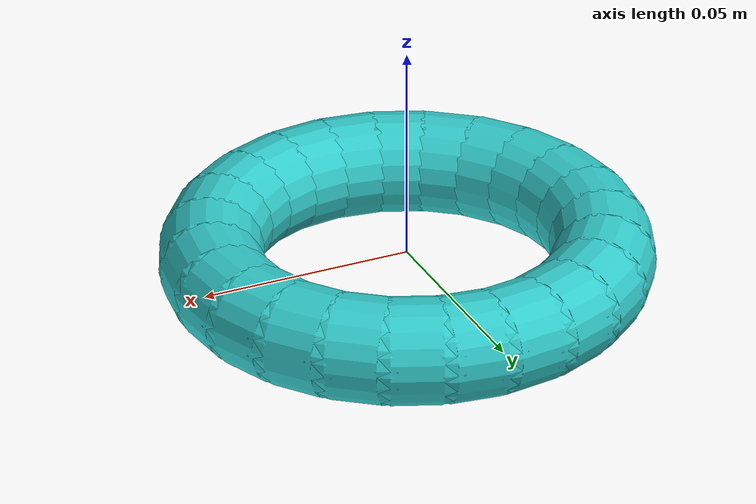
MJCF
<mujoco model="torus_ring_size1">
  <worldbody>
    <body>
      <body name="object">
        <!-- 组合几何体生成圆环 -->
        <geom name="ring_seg_0" type="capsule" fromto="0.045 0.0 0 0.04346666218300807 0.011646857029613433 0" size="0.011" rgba="0.2 0.8 0.8 1" density="50" friction="1.0 0.05 0.05" condim="6" solref="0.001 1" solimp="0.95 0.99 0.001" group="0"/>
        <geom name="ring_seg_vis_0" type="capsule" fromto="0.045 0.0 0 0.04346666218300807 0.011646857029613433 0" size="0.012" rgba="0.2 0.8 0.8 1" contype="0" conaffinity="0" group="1"/>
        <geom name="ring_seg_1" type="capsule" fromto="0.04346666218300807 0.011646857029613433 0 0.03897114317029974 0.022499999999999996 0" size="0.011" rgba="0.2 0.8 0.8 1" density="50" friction="1.0 0.05 0.05" condim="6" solref="0.001 1" solimp="0.95 0.99 0.001" group="0"/>
        <geom name="ring_seg_vis_1" type="capsule" fromto="0.04346666218300807 0.011646857029613433 0 0.03897114317029974 0.022499999999999996 0" size="0.012" rgba="0.2 0.8 0.8 1" contype="0" conaffinity="0" group="1"/>
        <geom name="ring_seg_2" type="capsule" fromto="0.03897114317029974 0.022499999999999996 0 0.03181980515339464 0.03181980515339464 0" size="0.011" rgba="0.2 0.8 0.8 1" density="50" friction="1.0 0.05 0.05" condim="6" solref="0.001 1" solimp="0.95 0.99 0.001" group="0"/>
        <geom name="ring_seg_vis_2" type="capsule" fromto="0.03897114317029974 0.022499999999999996 0 0.03181980515339464 0.03181980515339464 0" size="0.012" rgba="0.2 0.8 0.8 1" contype="0" conaffinity="0" group="1"/>
        <geom name="ring_seg_3" type="capsule" fromto="0.03181980515339464 0.03181980515339464 0 0.022500000000000003 0.03897114317029973 0" size="0.011" rgba="0.2 0.8 0.8 1" density="50" friction="1.0 0.05 0.05" condim="6" solref="0.001 1" solimp="0.95 0.99 0.001" group="0"/>
        <geom name="ring_seg_vis_3" type="capsule" fromto="0.03181980515339464 0.03181980515339464 0 0.022500000000000003 0.03897114317029973 0" size="0.012" rgba="0.2 0.8 0.8 1" contype="0" conaffinity="0" group="1"/>
        <geom name="ring_seg_4" type="capsule" fromto="0.022500000000000003 0.03897114317029973 0 0.011646857029613433 0.04346666218300807 0" size="0.011" rgba="0.2 0.8 0.8 1" density="50" friction="1.0 0.05 0.05" condim="6" solref="0.001 1" solimp="0.95 0.99 0.001" group="0"/>
        <geom name="ring_seg_vis_4" type="capsule" fromto="0.022500000000000003 0.03897114317029973 0 0.011646857029613433 0.04346666218300807 0" size="0.012" rgba="0.2 0.8 0.8 1" contype="0" conaffinity="0" group="1"/>
        <geom name="ring_seg_5" type="capsule" fromto="0.011646857029613433 0.04346666218300807 0 2.7554552980815448e-18 0.045 0" size="0.011" rgba="0.2 0.8 0.8 1" density="50" friction="1.0 0.05 0.05" condim="6" solref="0.001 1" solimp="0.95 0.99 0.001" group="0"/>
        <geom name="ring_seg_vis_5" type="capsule" fromto="0.011646857029613433 0.04346666218300807 0 2.7554552980815448e-18 0.045 0" size="0.012" rgba="0.2 0.8 0.8 1" contype="0" conaffinity="0" group="1"/>
        <geom name="ring_seg_6" type="capsule" fromto="2.7554552980815448e-18 0.045 0 -0.011646857029613428 0.04346666218300807 0" size="0.011" rgba="0.2 0.8 0.8 1" density="50" friction="1.0 0.05 0.05" condim="6" solref="0.001 1" solimp="0.95 0.99 0.001" group="0"/>
        <geom name="ring_seg_vis_6" type="capsule" fromto="2.7554552980815448e-18 0.045 0 -0.011646857029613428 0.04346666218300807 0" size="0.012" rgba="0.2 0.8 0.8 1" contype="0" conaffinity="0" group="1"/>
        <geom name="ring_seg_7" type="capsule" fromto="-0.011646857029613428 0.04346666218300807 0 -0.02249999999999999 0.03897114317029974 0" size="0.011" rgba="0.2 0.8 0.8 1" density="50" friction="1.0 0.05 0.05" condim="6" solref="0.001 1" solimp="0.95 0.99 0.001" group="0"/>
        <geom name="ring_seg_vis_7" type="capsule" fromto="-0.011646857029613428 0.04346666218300807 0 -0.02249999999999999 0.03897114317029974 0" size="0.012" rgba="0.2 0.8 0.8 1" contype="0" conaffinity="0" group="1"/>
        <geom name="ring_seg_8" type="capsule" fromto="-0.02249999999999999 0.03897114317029974 0 -0.03181980515339464 0.03181980515339464 0" size="0.011" rgba="0.2 0.8 0.8 1" density="50" friction="1.0 0.05 0.05" condim="6" solref="0.001 1" solimp="0.95 0.99 0.001" group="0"/>
        <geom name="ring_seg_vis_8" type="capsule" fromto="-0.02249999999999999 0.03897114317029974 0 -0.03181980515339464 0.03181980515339464 0" size="0.012" rgba="0.2 0.8 0.8 1" contype="0" conaffinity="0" group="1"/>
        <geom name="ring_seg_9" type="capsule" fromto="-0.03181980515339464 0.03181980515339464 0 -0.03897114317029974 0.022499999999999996 0" size="0.011" rgba="0.2 0.8 0.8 1" density="50" friction="1.0 0.05 0.05" condim="6" solref="0.001 1" solimp="0.95 0.99 0.001" group="0"/>
        <geom name="ring_seg_vis_9" type="capsule" fromto="-0.03181980515339464 0.03181980515339464 0 -0.03897114317029974 0.022499999999999996 0" size="0.012" rgba="0.2 0.8 0.8 1" contype="0" conaffinity="0" group="1"/>
        <geom name="ring_seg_10" type="capsule" fromto="-0.03897114317029974 0.022499999999999996 0 -0.04346666218300807 0.011646857029613445 0" size="0.011" rgba="0.2 0.8 0.8 1" density="50" friction="1.0 0.05 0.05" condim="6" solref="0.001 1" solimp="0.95 0.99 0.001" group="0"/>
        <geom name="ring_seg_vis_10" type="capsule" fromto="-0.03897114317029974 0.022499999999999996 0 -0.04346666218300807 0.011646857029613445 0" size="0.012" rgba="0.2 0.8 0.8 1" contype="0" conaffinity="0" group="1"/>
        <geom name="ring_seg_11" type="capsule" fromto="-0.04346666218300807 0.011646857029613445 0 -0.045 5.5109105961630896e-18 0" size="0.011" rgba="0.2 0.8 0.8 1" density="50" friction="1.0 0.05 0.05" condim="6" solref="0.001 1" solimp="0.95 0.99 0.001" group="0"/>
        <geom name="ring_seg_vis_11" type="capsule" fromto="-0.04346666218300807 0.011646857029613445 0 -0.045 5.5109105961630896e-18 0" size="0.012" rgba="0.2 0.8 0.8 1" contype="0" conaffinity="0" group="1"/>
        <geom name="ring_seg_12" type="capsule" fromto="-0.045 5.5109105961630896e-18 0 -0.04346666218300807 -0.011646857029613435 0" size="0.011" rgba="0.2 0.8 0.8 1" density="50" friction="1.0 0.05 0.05" condim="6" solref="0.001 1" solimp="0.95 0.99 0.001" group="0"/>
        <geom name="ring_seg_vis_12" type="capsule" fromto="-0.045 5.5109105961630896e-18 0 -0.04346666218300807 -0.011646857029613435 0" size="0.012" rgba="0.2 0.8 0.8 1" contype="0" conaffinity="0" group="1"/>
        <geom name="ring_seg_13" type="capsule" fromto="-0.04346666218300807 -0.011646857029613435 0 -0.038971143170299746 -0.022499999999999985 0" size="0.011" rgba="0.2 0.8 0.8 1" density="50" friction="1.0 0.05 0.05" condim="6" solref="0.001 1" solimp="0.95 0.99 0.001" group="0"/>
        <geom name="ring_seg_vis_13" type="capsule" fromto="-0.04346666218300807 -0.011646857029613435 0 -0.038971143170299746 -0.022499999999999985 0" size="0.012" rgba="0.2 0.8 0.8 1" contype="0" conaffinity="0" group="1"/>
        <geom name="ring_seg_14" type="capsule" fromto="-0.038971143170299746 -0.022499999999999985 0 -0.03181980515339466 -0.03181980515339462 0" size="0.011" rgba="0.2 0.8 0.8 1" density="50" friction="1.0 0.05 0.05" condim="6" solref="0.001 1" solimp="0.95 0.99 0.001" group="0"/>
        <geom name="ring_seg_vis_14" type="capsule" fromto="-0.038971143170299746 -0.022499999999999985 0 -0.03181980515339466 -0.03181980515339462 0" size="0.012" rgba="0.2 0.8 0.8 1" contype="0" conaffinity="0" group="1"/>
        <geom name="ring_seg_15" type="capsule" fromto="-0.03181980515339466 -0.03181980515339462 0 -0.02250000000000002 -0.038971143170299725 0" size="0.011" rgba="0.2 0.8 0.8 1" density="50" friction="1.0 0.05 0.05" condim="6" solref="0.001 1" solimp="0.95 0.99 0.001" group="0"/>
        <geom name="ring_seg_vis_15" type="capsule" fromto="-0.03181980515339466 -0.03181980515339462 0 -0.02250000000000002 -0.038971143170299725 0" size="0.012" rgba="0.2 0.8 0.8 1" contype="0" conaffinity="0" group="1"/>
        <geom name="ring_seg_16" type="capsule" fromto="-0.02250000000000002 -0.038971143170299725 0 -0.011646857029613428 -0.04346666218300807 0" size="0.011" rgba="0.2 0.8 0.8 1" density="50" friction="1.0 0.05 0.05" condim="6" solref="0.001 1" solimp="0.95 0.99 0.001" group="0"/>
        <geom name="ring_seg_vis_16" type="capsule" fromto="-0.02250000000000002 -0.038971143170299725 0 -0.011646857029613428 -0.04346666218300807 0" size="0.012" rgba="0.2 0.8 0.8 1" contype="0" conaffinity="0" group="1"/>
        <geom name="ring_seg_17" type="capsule" fromto="-0.011646857029613428 -0.04346666218300807 0 -8.266365894244633e-18 -0.045 0" size="0.011" rgba="0.2 0.8 0.8 1" density="50" friction="1.0 0.05 0.05" condim="6" solref="0.001 1" solimp="0.95 0.99 0.001" group="0"/>
        <geom name="ring_seg_vis_17" type="capsule" fromto="-0.011646857029613428 -0.04346666218300807 0 -8.266365894244633e-18 -0.045 0" size="0.012" rgba="0.2 0.8 0.8 1" contype="0" conaffinity="0" group="1"/>
        <geom name="ring_seg_18" type="capsule" fromto="-8.266365894244633e-18 -0.045 0 0.011646857029613412 -0.04346666218300808 0" size="0.011" rgba="0.2 0.8 0.8 1" density="50" friction="1.0 0.05 0.05" condim="6" solref="0.001 1" solimp="0.95 0.99 0.001" group="0"/>
        <geom name="ring_seg_vis_18" type="capsule" fromto="-8.266365894244633e-18 -0.045 0 0.011646857029613412 -0.04346666218300808 0" size="0.012" rgba="0.2 0.8 0.8 1" contype="0" conaffinity="0" group="1"/>
        <geom name="ring_seg_19" type="capsule" fromto="0.011646857029613412 -0.04346666218300808 0 0.022500000000000003 -0.03897114317029973 0" size="0.011" rgba="0.2 0.8 0.8 1" density="50" friction="1.0 0.05 0.05" condim="6" solref="0.001 1" solimp="0.95 0.99 0.001" group="0"/>
        <geom name="ring_seg_vis_19" type="capsule" fromto="0.011646857029613412 -0.04346666218300808 0 0.022500000000000003 -0.03897114317029973 0" size="0.012" rgba="0.2 0.8 0.8 1" contype="0" conaffinity="0" group="1"/>
        <geom name="ring_seg_20" type="capsule" fromto="0.022500000000000003 -0.03897114317029973 0 0.03181980515339463 -0.031819805153394644 0" size="0.011" rgba="0.2 0.8 0.8 1" density="50" friction="1.0 0.05 0.05" condim="6" solref="0.001 1" solimp="0.95 0.99 0.001" group="0"/>
        <geom name="ring_seg_vis_20" type="capsule" fromto="0.022500000000000003 -0.03897114317029973 0 0.03181980515339463 -0.031819805153394644 0" size="0.012" rgba="0.2 0.8 0.8 1" contype="0" conaffinity="0" group="1"/>
        <geom name="ring_seg_21" type="capsule" fromto="0.03181980515339463 -0.031819805153394644 0 0.038971143170299725 -0.02250000000000002 0" size="0.011" rgba="0.2 0.8 0.8 1" density="50" friction="1.0 0.05 0.05" condim="6" solref="0.001 1" solimp="0.95 0.99 0.001" group="0"/>
        <geom name="ring_seg_vis_21" type="capsule" fromto="0.03181980515339463 -0.031819805153394644 0 0.038971143170299725 -0.02250000000000002 0" size="0.012" rgba="0.2 0.8 0.8 1" contype="0" conaffinity="0" group="1"/>
        <geom name="ring_seg_22" type="capsule" fromto="0.038971143170299725 -0.02250000000000002 0 0.04346666218300806 -0.01164685702961347 0" size="0.011" rgba="0.2 0.8 0.8 1" density="50" friction="1.0 0.05 0.05" condim="6" solref="0.001 1" solimp="0.95 0.99 0.001" group="0"/>
        <geom name="ring_seg_vis_22" type="capsule" fromto="0.038971143170299725 -0.02250000000000002 0 0.04346666218300806 -0.01164685702961347 0" size="0.012" rgba="0.2 0.8 0.8 1" contype="0" conaffinity="0" group="1"/>
        <geom name="ring_seg_23" type="capsule" fromto="0.04346666218300806 -0.01164685702961347 0 0.045 0.0 0" size="0.011" rgba="0.2 0.8 0.8 1" density="50" friction="1.0 0.05 0.05" condim="6" solref="0.001 1" solimp="0.95 0.99 0.001" group="0"/>
        <geom name="ring_seg_vis_23" type="capsule" fromto="0.04346666218300806 -0.01164685702961347 0 0.045 0.0 0" size="0.012" rgba="0.2 0.8 0.8 1" contype="0" conaffinity="0" group="1"/>
      </body>
    </body>
  </worldbody>
</mujoco>
